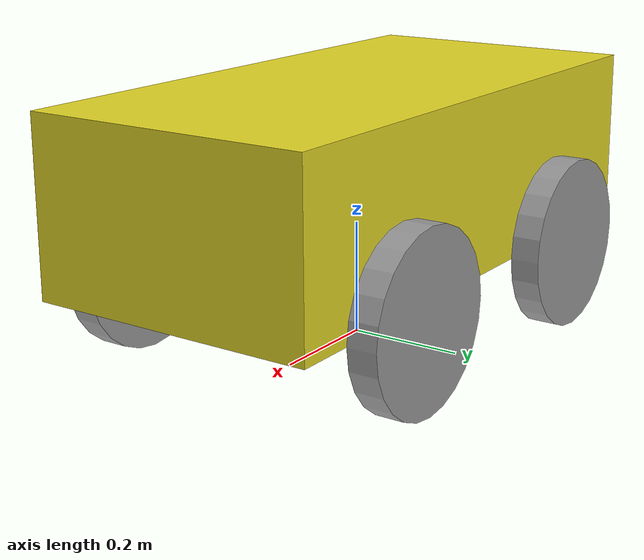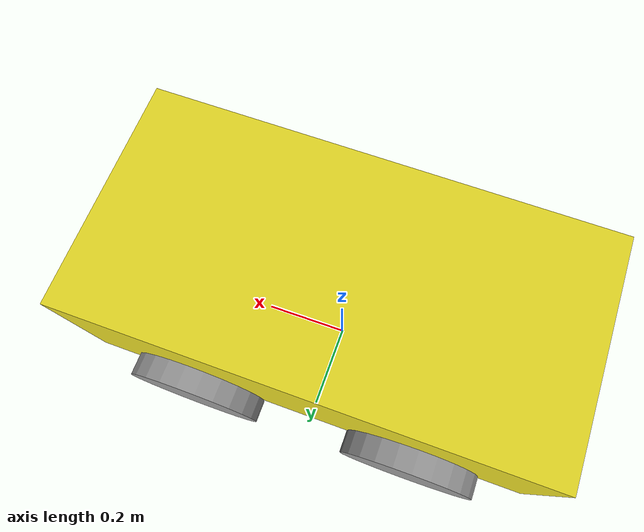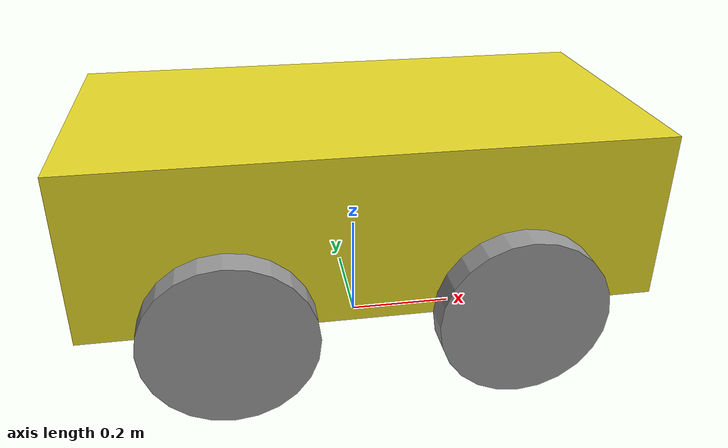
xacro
<?xml version="1.0"?>
<robot xmlns:xacro="http://www.ros.org/wiki/xacro">

    <xacro:property name="base_length" value="1.0" />
    <xacro:property name="base_width" value="0.5" />
    <xacro:property name="base_height" value="0.3" />
    <xacro:property name="wheel_radius" value="0.15" />
    <xacro:property name="wheel_length" value="0.05" />

    <xacro:macro name="box_inertia" params="m x y z o_xyz o_rpy">
        <inertial>
            <mass value="${m}" />
            <origin xyz="${o_xyz}" rpy="${o_rpy}" />
            <inertia ixx="${(m/12) * (y*y + z*z)}" ixy="0" ixz="0"
                iyy="${(m/12) * (x*x + z*z)}" iyz="0"
                izz="${(m/12) * (x*x + y*y)}" />
        </inertial>
    </xacro:macro>

    <xacro:macro name="cylinder_inertia" params="m r l o_xyz o_rpy">
        <inertial>
            <mass value="${m}" />
            <origin xyz="${o_xyz}" rpy="${o_rpy}" />
            <inertia ixx="${(m/12) * (3*r*r + l*l)}" ixy="0" ixz="0"
                iyy="${(m/12) * (3*r*r + l*l)}" iyz="0"
                izz="${(m/2) * (r*r)}" />
        </inertial>
    </xacro:macro>

    <xacro:macro name="sphere_inertia" params="m r o_xyz o_rpy">
        <inertial>
            <mass value="${m}" />
            <origin xyz="${o_xyz}" rpy="${o_rpy}" />
            <inertia ixx="${(2/5) * m * r * r}" ixy="0" ixz="0"
                iyy="${(2/5) * m * r * r}" iyz="0"
                izz="${(2/5) * m * r * r}" />
        </inertial>
    </xacro:macro>
    <link name="base_footprint" />

    <link name="mobile_base_link">
        <visual>
            <geometry>
                <box size="${base_length} ${base_width} ${base_height}" />
            </geometry>
            <origin xyz="0 0 ${base_height / 2.0}" rpy="0 0 0" />
            <material name="yellow" />
        </visual>
        <collision>
            <geometry>
                <box size="${base_length} ${base_width} ${base_height}" />
            </geometry>
            <origin xyz="0 0 ${base_height / 2.0}" rpy="0 0 0" />
        </collision>
        <xacro:box_inertia m="5.0" x="${base_length}" y="${base_width}" z="${base_height}"
            o_xyz="0 0 ${base_height / 2.0}" o_rpy="0 0 0" />
    </link>

    <xacro:macro name="wheel_link" params="prefix">
        <link name="${prefix}_wheel_link">
            <visual>
                <geometry>
                    <cylinder radius="${wheel_radius}" length="${wheel_length}" />
                </geometry>
                <origin xyz="0 0 0" rpy="${pi / 2.0} 0 0" />
                <material name="grey" />
            </visual>
            <collision>
                <geometry>
                    <sphere radius="${wheel_radius}" />
                </geometry>
                <origin xyz="0 0 0" rpy="0 0 0" />
            </collision>
            <xacro:cylinder_inertia m="1.0" r="${wheel_radius}" l="${wheel_length}"
                o_xyz="0 0 0" o_rpy="${pi / 2.0} 0 0" />
        </link>
    </xacro:macro>

    <xacro:wheel_link prefix="rear_right" />
    <xacro:wheel_link prefix="rear_left" />
    <xacro:wheel_link prefix="front_right" />
    <xacro:wheel_link prefix="front_left" />

    <joint name="base_joint" type="fixed">
        <parent link="base_footprint" />
        <child link="mobile_base_link" />
        <origin xyz="0 0 ${wheel_radius}" rpy="0 0 0" />
    </joint>

    <joint name="base_rear_right_wheel_joint" type="continuous">
        <parent link="mobile_base_link" />
        <child link="rear_right_wheel_link" />
        <origin xyz="${-base_length / 4.0} ${-(base_width + wheel_length) / 2.0} 0" rpy="0 0 0" />
        <axis xyz="0 1 0" />
    </joint>

    <joint name="base_rear_left_wheel_joint" type="continuous">
        <parent link="mobile_base_link" />
        <child link="rear_left_wheel_link" />
        <origin xyz="${-base_length / 4.0} ${(base_width + wheel_length) / 2.0} 0" rpy="0 0 0" />
        <axis xyz="0 1 0" />
    </joint>

    <joint name="base_front_right_wheel_joint" type="continuous">
        <parent link="mobile_base_link" />
        <child link="front_right_wheel_link" />
        <origin xyz="${base_length / 4.0} ${-(base_width + wheel_length) / 2.0} 0" rpy="0 0 0" />
        <axis xyz="0 1 0" />
    </joint>

    <joint name="base_front_left_wheel_joint" type="continuous">
        <parent link="mobile_base_link" />
        <child link="front_left_wheel_link" />
        <origin xyz="${base_length / 4.0} ${(base_width + wheel_length) / 2.0} 0" rpy="0 0 0" />
        <axis xyz="0 1 0" />
    </joint>

</robot>
